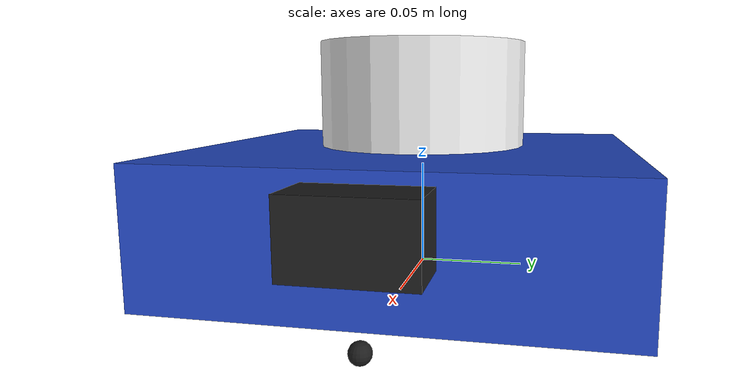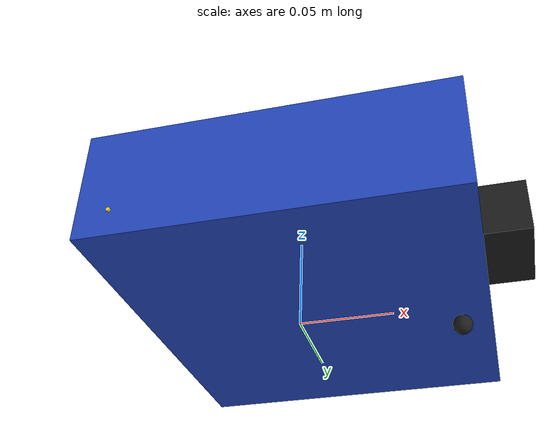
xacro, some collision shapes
<?xml version="1.0"?>
<robot name="2wheels" xmlns:xacro="http://www.ros.org/wiki/xacro">
 <!-- A dummy link to avoid KDL error  -->
  <link name="base_link"/>
  <joint name="dummy joint" type="fixed">
    <origin rpy="0 0 0" xyz="0 0 0"/>
    <parent link="base_link"/>
    <child  link="chassis_link"/>
  </joint>

  <!-- Chassis link -->
  <link name="chassis_link">
    <!-- pose and inertial -->
    <pose>0 0 0 0 0 0</pose>
    <inertial>
      <mass value="6.0"/>
      <origin rpy="0 0 0" xyz="0.01 0 0.03"/>
      <inertia ixx="0.007" ixy="0" ixz="0" iyy="0.00547" iyz="0" izz="0.012023"/>
    </inertial>
    <!-- body -->
    <collision name="collision_chassis">
      <origin rpy=" 0 0 0" xyz="0.01 0 0.03"/>
      <geometry>
        <box size="0.18 0.2 0.06"/> <!-- ancho, largo, alto -->
      </geometry>
    </collision>
    <visual>
      <origin rpy="0 0 -1.5708" xyz="0.0 0 0.0"/>
      <geometry>
        <mesh filename="package://two_wheels_description/meshes/robotmodel.dae"/>
      </geometry>
      <material name="blue"/> <!-- This is only for Rviz visualization -->
    </visual>
  </link>

  <!-- caster joint -->
  <joint name="joint_caster" type="continuous">
    <origin rpy="0 0 0" xyz="0.085 -0.008 -0.015"/>
    <!--origin rpy="0 0 0" xyz="0.008 0.085 -0.015"/-->
    <child link="caster_wheel"/>
    <parent link="chassis_link"/>
    <axis rpy="0 0 0" xyz="0 0 1"/>
    <limit effort="1000" velocity="10"/>
    <joint_properties damping="0.0" friction="0.01"/>
  </joint>

  <!-- caster front link -->
  <link name="caster_wheel">
    <inertial>
      <mass value="0.05"/>
      <origin rpy="0 0 0" xyz="0 0 0"/>
      <inertia ixx="0.000001" ixy="0" ixz="0" iyy="0.000001" iyz="0" izz="0.000001"/>
    </inertial>
    <collision name="caster_front_collision">
      <origin rpy=" 0 0 0" xyz="0.0 0 0"/>
      <geometry>
        <sphere radius="0.0051"/>
      </geometry>
      <surface>
        <friction>
          <ode>
            <mu>0.0</mu>
            <mu2>0.0</mu2>
            <slip1>0.0</slip1>
            <slip2>0.0</slip2>
          </ode>
        </friction>
      </surface>
    </collision>
    <visual name="caster_front_visual">
      <origin rpy=" 0 0 0" xyz="0.0 0 0"/>
      <geometry>
        <sphere radius="0.005"/>
      </geometry>
    </visual>
  </link>
  <gazebo reference="caster_wheel">
    <mu1 value="0.0"/>
    <mu2 value="0.0"/>
    <kp value="10000000.0"/>
    <kd value="1.0"/>
    <fdir1 value="0 0 0"/>
    <material>Gazebo/Black</material>
    <turnGravityOff>false</turnGravityOff>
  </gazebo>

  <!-- XXXXXXXXXXX -->
  <!-- Right wheel -->
  <!-- XXXXXXXXXXX -->
  <!-- Joint between right wheel and chassis -->
  <joint name="joint_right_wheel" type="continuous">
    <origin rpy="-1.57079632 0  0" xyz="-0.0572 -0.11 0.006"/>
    <!--origin rpy="0 1.570 0" xyz="0.11 -0.057 0.012"/-->
    <child link="link_right_wheel"/>
    <parent link="chassis_link"/>
    <axis rpy="0 0 0" xyz="0 0 1"/>
    <limit effort="1000" velocity="100"/>
    <joint_properties damping="0.01" friction="0.01"/>
  </joint>
  <!-- right link -->
  <link name="link_right_wheel">
    <inertial>
      <mass value="0.1"/>
      <origin rpy="0 0 0" xyz="0 0 0"/>
      <inertia ixx="0.000016458" ixy="0" ixz="0" iyy="0.000016458" iyz="0" izz="0.000016458"/>
    </inertial>
     <surface>
        <friction>
          <ode>
            <mu>0.03</mu>
            <mu2>0.03</mu2>
          </ode>
        </friction>
      </surface>
    <collision name="link_right_wheel_collision">
      <origin rpy="0 0 0" xyz="0 0 0"/>
      <geometry>
        <cylinder length="0.01" radius="0.025"/>
      </geometry>
    </collision>
    <visual name="link_right_wheel_visual">
      <origin rpy="0 0 0" xyz="0 0 0"/>
      <geometry>
        <cylinder length="0.001" radius="0.001"/>
      </geometry>
    </visual>
  </link>

  <!-- XXXXXXXXXXX -->
  <!-- LEFT wheel -->
  <!-- XXXXXXXXXXX -->
   <!-- Joint between LEFT wheel and chassis -->
  <joint name="joint_left_wheel" type="continuous">
        <!-- Previous  xyz="-0.095 -0.055 0.01 -->
        <origin rpy="1.57079632 0  0" xyz="-0.0572 0.11  0.006"/>
        <!--origin rpy="0 -1.570 0" xyz="-0.11 -0.057 0.012"/--> <!-- PAY ATTENTION NEGATIVE 'y' -->
        <child link="link_left_wheel"/>
        <parent link="chassis_link"/>
        <axis rpy="0 0 0" xyz="0 0 -1"/>
        <limit effort="1000" velocity="100"/>
        <joint_properties damping="0.01" friction="0.01"/>
  </joint>
  <!-- left link -->
  <link name="link_left_wheel">
        <inertial>
          <mass value="0.1"/>
          <origin rpy="0 0 0" xyz="0 0 0"/>
          <inertia ixx="0.000016458" ixy="0" ixz="0" iyy="0.000016458" iyz="0" izz="0.000016458"/>
        </inertial>
         <surface>
        <friction>
          <ode>
            <mu>0.03</mu>
            <mu2>0.03</mu2>
          </ode>
        </friction>
      </surface>
        <collision name="link_left_wheel_collision">
          <origin rpy="0 0 0" xyz="0 0 0"/>
          <geometry>
            <cylinder length="0.01" radius="0.025"/>
          </geometry>
        </collision>
        <visual name="link_left_wheel_visual">
          <origin rpy="0 0 0" xyz="0 0 0"/>
          <geometry>
            <cylinder length="0.001" radius="0.001"/>
          </geometry>
        </visual>
  </link>

  <!-- laser link -->
  <link name="base_laser_link">
    <inertial>
      <origin xyz="0 0 0" rpy="0 0 0" />
      <mass value="0.25" />
      <inertia ixx="0.000208333" ixy="0" ixz="0" iyy="0.000208333" iyz="0" izz="0.0003125"/>
    </inertial>

    <visual>
      <origin xyz="0 0 0" rpy="0 0 0" />
      <geometry>
        <cylinder radius="0.05" length="0.05"/>
      </geometry>
      <material name="white" />
    </visual>

    <collision>
      <origin xyz="0 0 0" rpy="0 0 0"/>
      <geometry>
        <cylinder radius="0.05" length="0.05"/>
      </geometry>
    </collision>
  </link>
  <gazebo reference="base_laser_link"> <!--Color for the link -->
      <material>Gazebo/Black</material>
  </gazebo>

  <!-- joint to attach the laser to the chassis -->
  <joint name="joint_base_laser_link" type="fixed">
    <origin xyz="0.0 0 0.085" rpy="0 0.0 0"/>
    <parent link="chassis_link"/>
    <child link="base_laser_link"/>
  </joint>

  <!-- Plugin for the wheels -->
  <gazebo>
    <plugin filename="libgazebo_ros_diff_drive.so" name="differential_drive_controller">
      <legacyMode>false</legacyMode>
      <alwaysOn>true</alwaysOn>
      <updateRate>40</updateRate>
      <leftJoint>joint_left_wheel</leftJoint>
      <rightJoint>joint_right_wheel</rightJoint>
      <wheelSeparation>0.22</wheelSeparation>
      <wheelDiameter>0.025</wheelDiameter>
      <!-- Wheel acceleration, in rad/s^2, defaults to 0.0 rad/s^2 -->
      <wheelAcceleration>100.0</wheelAcceleration>
      <!-- Maximum torque which the wheels can produce, in Nm, defaults to 5 Nm -->
      <wheelTorque>4000</wheelTorque>
       <!-- Topic to receive geometry_msgs/Twist message commands, defaults to `cmd_vel` -->
      <commandTopic>cmd_vel</commandTopic>
      <!-- Odometry source, 0 for ENCODER, 1 for WORLD, defaults to WORLD -->
      <odometrySource>1</odometrySource>
      <odometryTopic>odom</odometryTopic>
      <odometryFrame>odom</odometryFrame>
      <!-- Set to true to publish transforms for the wheel links, defaults to false -->
      <publishWheelTF>true</publishWheelTF>
      <robotBaseFrame>base_link_simulated</robotBaseFrame>
    </plugin>
  </gazebo>

    <!-- plugin for the laser -->
   <gazebo reference="base_laser_link">
    <sensor type="ray" name="head_rplidar">
      <pose>0 0 0 0 0 0</pose>
      <visualize>false</visualize>
      <update_rate>10</update_rate><!--10 hz as the RP lidar-->
      <ray>
        <scan>
          <horizontal>
            <samples>1440</samples>
            <resolution>1</resolution>
            <min_angle>-3.141596</min_angle>
            <max_angle>3.141596</max_angle>
          </horizontal>
        </scan>
        <range>
          <min>0.15</min>
          <max>8.0</max>
          <resolution>0.01</resolution>
        </range>
        <noise>
          <type>gaussian</type>
          <mean>0.0</mean>
          <stddev>0.01</stddev>
        </noise>
      </ray>
      <plugin name="gazebo_ros_head_hokuyo_controller" filename="libgazebo_ros_laser.so">
        <topicName>/base_scan</topicName>
        <frameName>base_laser_link</frameName>
      </plugin>
    </sensor>
  </gazebo>

  <!-- XXXXXXXXXXXXXXXXXXXXXXXXXXXXXX
  Simulation of a camera:
  XXXXXXXXXXXXXXXXXXXXXXXXXXXXX-->
  <joint name="camera1_joint"  type="revolute">
        <axis xyz="0 1 0"/>
        <limit effort="100000.0" lower="-0.8" upper="0.3" velocity="0.2"/>
         <origin xyz="0.11 0.0 0.04" rpy="0 0 0"/>
        <parent link="chassis_link"/>
         <child link="camera1_link"/>
    </joint>
 <!-- Camera -->
  <link name="camera1_link">
    <collision>
      <origin xyz="0 0 0" rpy="0 0 0"/>
      <geometry>
    <box size="0.03 0.05 0.03"/>
      </geometry>
    </collision>

    <visual>
      <origin xyz="0 0 0" rpy="0 0 0"/>
      <geometry>
        <box size="0.03 0.05 0.03"/>
      </geometry>
    </visual>
    <inertial>
      <mass value="0.04" />
      <origin xyz="0 0 0" rpy="0 0 0"/>
      <inertia ixx="0.000001" ixy="0" ixz="0" iyy="0.000001" iyz="0" izz="0.000001" />
    </inertial>
  </link>
  <gazebo reference="camera1_link"> <!--Color for the camera1_link -->
      <material>Gazebo/Black</material>
  </gazebo>

  <!-- Transmission camera -->
  <transmission name="camera1_tran">
    <type>transmission_interface/SimpleTransmission</type>
    <joint name="camera1_joint">
      <hardwareInterface>hardware_interface/EffortJointInterface</hardwareInterface>
    </joint>
    <actuator name="motor_camera1">
      <hardwareInterface>hardware_interface/EffortJointInterface</hardwareInterface>
      <mechanicalReduction>1</mechanicalReduction>
    </actuator>
  </transmission>
  <!-- Plugin for the camera -->
   <gazebo reference="camera1_link">
    <sensor type="camera" name="camera1">
      <update_rate>30.0</update_rate>
      <camera name="camera1">
        <horizontal_fov>1</horizontal_fov>
        <image>
          <width>640</width>
          <height>480</height>
          <format>R8G8B8</format>
        </image>
        <clip>
          <near>0.02</near>
          <far>300</far>
        </clip>
        <noise>
          <type>gaussian</type>
          <!-- Noise is sampled independently per pixel on each frame.
               That pixel's noise value is added to each of its color
               channels, which at that point lie in the range [0,1]. -->
          <mean>0.0</mean>
          <stddev>0.007</stddev>
        </noise>
      </camera>
      <plugin name="camera1_controller" filename="libgazebo_ros_camera.so">
        <alwaysOn>true</alwaysOn>
        <updateRate>0.0</updateRate>
        <cameraName>two_wheels_robot/camera1</cameraName>
        <imageTopicName>image_raw</imageTopicName>
        <cameraInfoTopicName>camera_info</cameraInfoTopicName>
        <frameName>camera_link</frameName>
        <hackBaseline>0.07</hackBaseline>
        <distortionK1>0.0</distortionK1>
        <distortionK2>0.0</distortionK2>
        <distortionK3>0.0</distortionK3>
        <distortionT1>0.0</distortionT1>
        <distortionT2>0.0</distortionT2>
      </plugin>
    </sensor>
  </gazebo>

<!-- ros_control Gazebo plugin -->
  <gazebo>
    <plugin name="gazebo_ros_control" filename="libgazebo_ros_control.so">
      <robotNamespace>/two_wheels_robot</robotNamespace>
      <robotSimType>gazebo_ros_control/DefaultRobotHWSim</robotSimType>
      <legacyModeNS>true</legacyModeNS>
    </plugin>
  </gazebo>

</robot>
